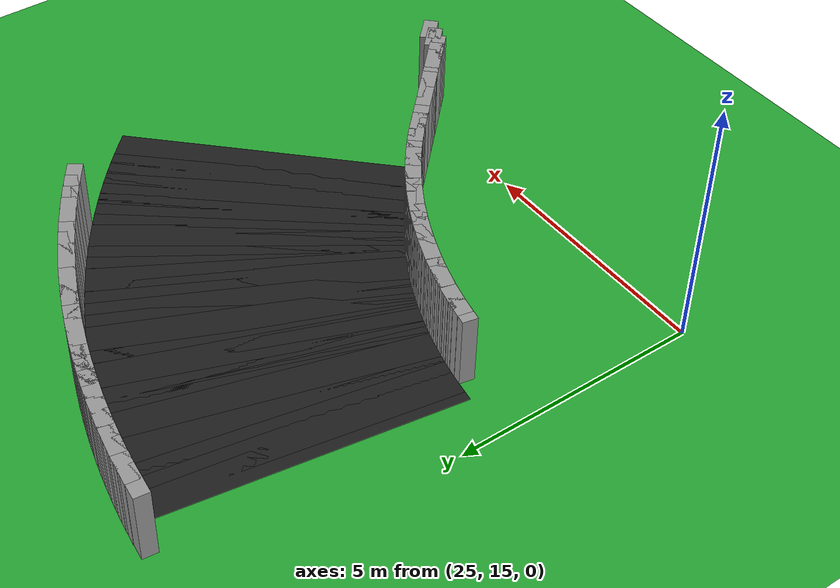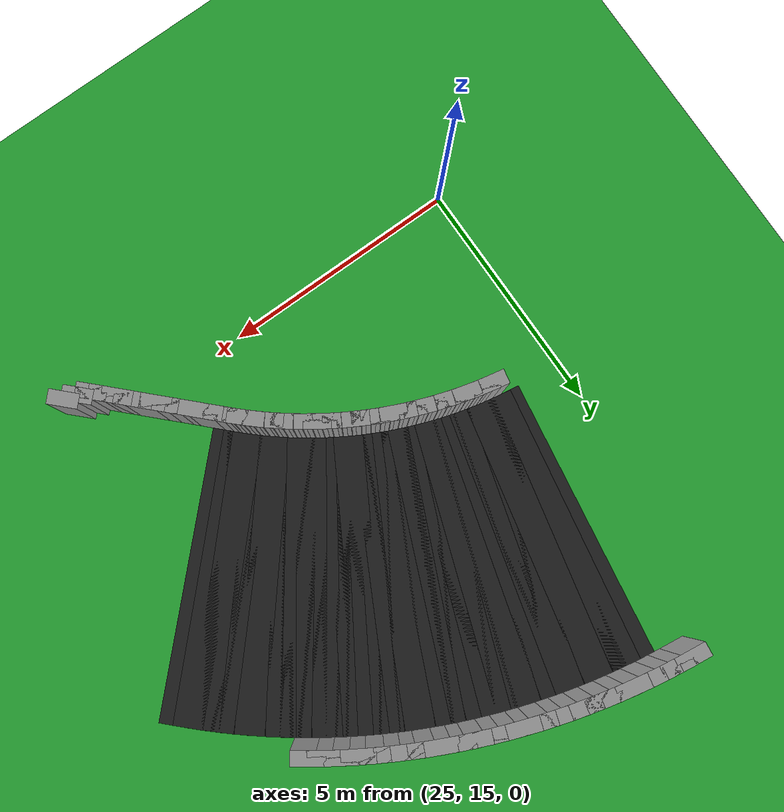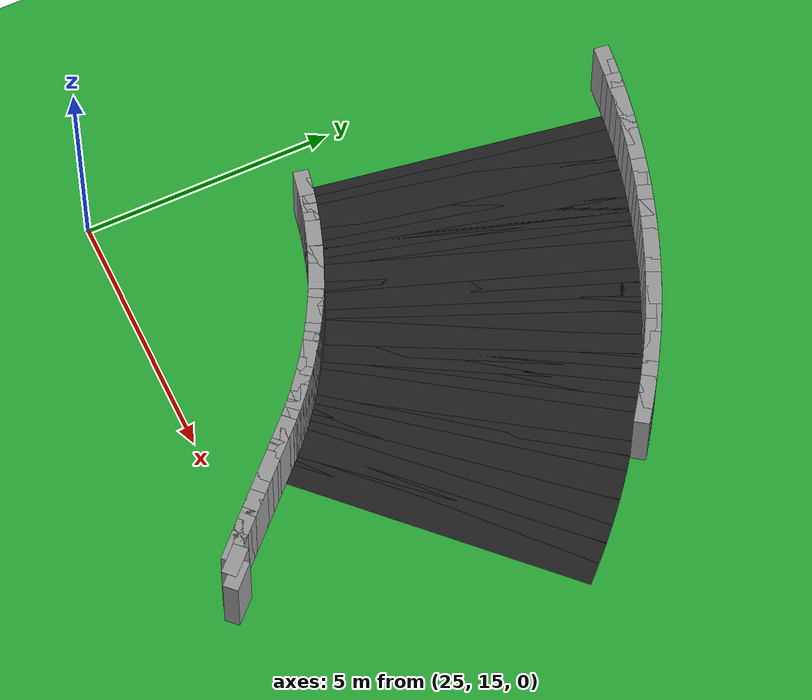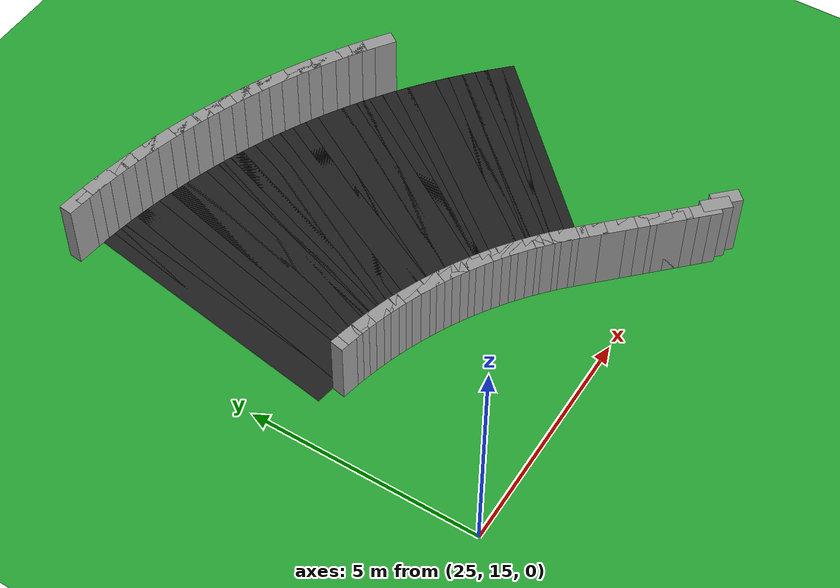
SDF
<sdf version="1.6">
 <world name="obstacle_asymturn">
  <include><uri>model://sun</uri></include>
  <model name="ground_plane">
   <static>true</static>
   <link name="link">
    <collision name="collision">
     <surface><friction><ode><mu>100</mu><mu2>50</mu2></ode></friction></surface>
     <geometry><plane><normal>0 0 1</normal><size>120 120</size></plane></geometry>
    </collision>
    <visual name="visual">
     <geometry><plane><normal>0 0 1</normal><size>120 120</size></plane></geometry>
     <material>
      <script><uri>file://media/materials/scripts/gazebo.material</uri><name>Gazebo/Green</name></script>
     </material>
    </visual>
   </link>
  </model>
  <model name="curbL_194">
   <static>true</static>
   <pose>33.458 14.373 0.750 0 0 2.35619</pose>
   <link name="link">
    <collision name="collision"><geometry><box><size>0.610 0.300 1.500</size></box></geometry></collision>
    <visual name="visual">
     <geometry><box><size>0.610 0.300 1.500</size></box></geometry>
     <material>
      <script><uri>file://media/materials/scripts/gazebo.material</uri><name>Gazebo/Grey</name></script>
     </material>
    </visual>
   </link>
  </model>
  <model name="curbL_195">
   <static>true</static>
   <pose>33.193 14.462 0.750 0 0 2.35619</pose>
   <link name="link">
    <collision name="collision"><geometry><box><size>0.610 0.300 1.500</size></box></geometry></collision>
    <visual name="visual">
     <geometry><box><size>0.610 0.300 1.500</size></box></geometry>
     <material>
      <script><uri>file://media/materials/scripts/gazebo.material</uri><name>Gazebo/Grey</name></script>
     </material>
    </visual>
   </link>
  </model>
  <model name="curbL_196">
   <static>true</static>
   <pose>32.943 14.565 0.750 0 0 2.35619</pose>
   <link name="link">
    <collision name="collision"><geometry><box><size>0.610 0.300 1.500</size></box></geometry></collision>
    <visual name="visual">
     <geometry><box><size>0.610 0.300 1.500</size></box></geometry>
     <material>
      <script><uri>file://media/materials/scripts/gazebo.material</uri><name>Gazebo/Grey</name></script>
     </material>
    </visual>
   </link>
  </model>
  <model name="curbL_197">
   <static>true</static>
   <pose>32.766 14.741 0.750 0 0 2.35619</pose>
   <link name="link">
    <collision name="collision"><geometry><box><size>0.610 0.300 1.500</size></box></geometry></collision>
    <visual name="visual">
     <geometry><box><size>0.610 0.300 1.500</size></box></geometry>
     <material>
      <script><uri>file://media/materials/scripts/gazebo.material</uri><name>Gazebo/Grey</name></script>
     </material>
    </visual>
   </link>
  </model>
  <model name="curbL_198">
   <static>true</static>
   <pose>32.589 14.918 0.750 0 0 2.35619</pose>
   <link name="link">
    <collision name="collision"><geometry><box><size>0.610 0.300 1.500</size></box></geometry></collision>
    <visual name="visual">
     <geometry><box><size>0.610 0.300 1.500</size></box></geometry>
     <material>
      <script><uri>file://media/materials/scripts/gazebo.material</uri><name>Gazebo/Grey</name></script>
     </material>
    </visual>
   </link>
  </model>
  <model name="curbL_199">
   <static>true</static>
   <pose>32.412 15.095 0.750 0 0 2.35619</pose>
   <link name="link">
    <collision name="collision"><geometry><box><size>0.610 0.300 1.500</size></box></geometry></collision>
    <visual name="visual">
     <geometry><box><size>0.610 0.300 1.500</size></box></geometry>
     <material>
      <script><uri>file://media/materials/scripts/gazebo.material</uri><name>Gazebo/Grey</name></script>
     </material>
    </visual>
   </link>
  </model>
  <model name="curbL_200">
   <static>true</static>
   <pose>32.236 15.272 0.750 0 0 2.35619</pose>
   <link name="link">
    <collision name="collision"><geometry><box><size>0.610 0.300 1.500</size></box></geometry></collision>
    <visual name="visual">
     <geometry><box><size>0.610 0.300 1.500</size></box></geometry>
     <material>
      <script><uri>file://media/materials/scripts/gazebo.material</uri><name>Gazebo/Grey</name></script>
     </material>
    </visual>
   </link>
  </model>
  <model name="curbL_201">
   <static>true</static>
   <pose>32.059 15.449 0.750 0 0 2.35619</pose>
   <link name="link">
    <collision name="collision"><geometry><box><size>0.610 0.300 1.500</size></box></geometry></collision>
    <visual name="visual">
     <geometry><box><size>0.610 0.300 1.500</size></box></geometry>
     <material>
      <script><uri>file://media/materials/scripts/gazebo.material</uri><name>Gazebo/Grey</name></script>
     </material>
    </visual>
   </link>
  </model>
  <model name="curbL_202">
   <static>true</static>
   <pose>31.882 15.625 0.750 0 0 2.35619</pose>
   <link name="link">
    <collision name="collision"><geometry><box><size>0.610 0.300 1.500</size></box></geometry></collision>
    <visual name="visual">
     <geometry><box><size>0.610 0.300 1.500</size></box></geometry>
     <material>
      <script><uri>file://media/materials/scripts/gazebo.material</uri><name>Gazebo/Grey</name></script>
     </material>
    </visual>
   </link>
  </model>
  <model name="curbL_203">
   <static>true</static>
   <pose>31.705 15.802 0.750 0 0 2.35619</pose>
   <link name="link">
    <collision name="collision"><geometry><box><size>0.610 0.300 1.500</size></box></geometry></collision>
    <visual name="visual">
     <geometry><box><size>0.610 0.300 1.500</size></box></geometry>
     <material>
      <script><uri>file://media/materials/scripts/gazebo.material</uri><name>Gazebo/Grey</name></script>
     </material>
    </visual>
   </link>
  </model>
  <model name="curbL_204">
   <static>true</static>
   <pose>31.528 15.979 0.750 0 0 2.35619</pose>
   <link name="link">
    <collision name="collision"><geometry><box><size>0.610 0.300 1.500</size></box></geometry></collision>
    <visual name="visual">
     <geometry><box><size>0.610 0.300 1.500</size></box></geometry>
     <material>
      <script><uri>file://media/materials/scripts/gazebo.material</uri><name>Gazebo/Grey</name></script>
     </material>
    </visual>
   </link>
  </model>
  <model name="curbL_205">
   <static>true</static>
   <pose>31.352 16.156 0.750 0 0 2.35619</pose>
   <link name="link">
    <collision name="collision"><geometry><box><size>0.610 0.300 1.500</size></box></geometry></collision>
    <visual name="visual">
     <geometry><box><size>0.610 0.300 1.500</size></box></geometry>
     <material>
      <script><uri>file://media/materials/scripts/gazebo.material</uri><name>Gazebo/Grey</name></script>
     </material>
    </visual>
   </link>
  </model>
  <model name="asphalt_206">
   <static>true</static>
   <pose>33.402 18.560 0.005 0 0 2.35619</pose>
   <link name="link">
    <visual name="visual">
     <geometry><box><size>0.610 6.000 0.010</size></box></geometry>
     <material>
      <script><uri>file://media/materials/scripts/gazebo.material</uri><name>Gazebo/Black</name></script>
     </material>
    </visual>
   </link>
  </model>
  <model name="curbL_206">
   <static>true</static>
   <pose>31.175 16.332 0.750 0 0 2.35619</pose>
   <link name="link">
    <collision name="collision"><geometry><box><size>0.610 0.300 1.500</size></box></geometry></collision>
    <visual name="visual">
     <geometry><box><size>0.610 0.300 1.500</size></box></geometry>
     <material>
      <script><uri>file://media/materials/scripts/gazebo.material</uri><name>Gazebo/Grey</name></script>
     </material>
    </visual>
   </link>
  </model>
  <model name="asphalt_207">
   <static>true</static>
   <pose>33.225 18.735 0.005 0 0 2.36653</pose>
   <link name="link">
    <visual name="visual">
     <geometry><box><size>0.608 6.000 0.010</size></box></geometry>
     <material>
      <script><uri>file://media/materials/scripts/gazebo.material</uri><name>Gazebo/Black</name></script>
     </material>
    </visual>
   </link>
  </model>
  <model name="curbL_207">
   <static>true</static>
   <pose>31.021 16.485 0.750 0 0 2.36653</pose>
   <link name="link">
    <collision name="collision"><geometry><box><size>0.543 0.300 1.500</size></box></geometry></collision>
    <visual name="visual">
     <geometry><box><size>0.543 0.300 1.500</size></box></geometry>
     <material>
      <script><uri>file://media/materials/scripts/gazebo.material</uri><name>Gazebo/Grey</name></script>
     </material>
    </visual>
   </link>
  </model>
  <model name="asphalt_208">
   <static>true</static>
   <pose>33.046 18.907 0.005 0 0 2.38720</pose>
   <link name="link">
    <visual name="visual">
     <geometry><box><size>0.608 6.000 0.010</size></box></geometry>
     <material>
      <script><uri>file://media/materials/scripts/gazebo.material</uri><name>Gazebo/Black</name></script>
     </material>
    </visual>
   </link>
  </model>
  <model name="curbL_208">
   <static>true</static>
   <pose>30.889 16.611 0.750 0 0 2.38720</pose>
   <link name="link">
    <collision name="collision"><geometry><box><size>0.543 0.300 1.500</size></box></geometry></collision>
    <visual name="visual">
     <geometry><box><size>0.543 0.300 1.500</size></box></geometry>
     <material>
      <script><uri>file://media/materials/scripts/gazebo.material</uri><name>Gazebo/Grey</name></script>
     </material>
    </visual>
   </link>
  </model>
  <model name="asphalt_209">
   <static>true</static>
   <pose>32.864 19.075 0.005 0 0 2.40787</pose>
   <link name="link">
    <visual name="visual">
     <geometry><box><size>0.608 6.000 0.010</size></box></geometry>
     <material>
      <script><uri>file://media/materials/scripts/gazebo.material</uri><name>Gazebo/Black</name></script>
     </material>
    </visual>
   </link>
  </model>
  <model name="curbL_209">
   <static>true</static>
   <pose>30.755 16.735 0.750 0 0 2.40787</pose>
   <link name="link">
    <collision name="collision"><geometry><box><size>0.543 0.300 1.500</size></box></geometry></collision>
    <visual name="visual">
     <geometry><box><size>0.543 0.300 1.500</size></box></geometry>
     <material>
      <script><uri>file://media/materials/scripts/gazebo.material</uri><name>Gazebo/Grey</name></script>
     </material>
    </visual>
   </link>
  </model>
  <model name="asphalt_210">
   <static>true</static>
   <pose>32.678 19.239 0.005 0 0 2.42853</pose>
   <link name="link">
    <visual name="visual">
     <geometry><box><size>0.608 6.000 0.010</size></box></geometry>
     <material>
      <script><uri>file://media/materials/scripts/gazebo.material</uri><name>Gazebo/Black</name></script>
     </material>
    </visual>
   </link>
  </model>
  <model name="curbL_210">
   <static>true</static>
   <pose>30.617 16.856 0.750 0 0 2.42853</pose>
   <link name="link">
    <collision name="collision"><geometry><box><size>0.543 0.300 1.500</size></box></geometry></collision>
    <visual name="visual">
     <geometry><box><size>0.543 0.300 1.500</size></box></geometry>
     <material>
      <script><uri>file://media/materials/scripts/gazebo.material</uri><name>Gazebo/Grey</name></script>
     </material>
    </visual>
   </link>
  </model>
  <model name="asphalt_211">
   <static>true</static>
   <pose>32.489 19.399 0.005 0 0 2.44920</pose>
   <link name="link">
    <visual name="visual">
     <geometry><box><size>0.608 6.000 0.010</size></box></geometry>
     <material>
      <script><uri>file://media/materials/scripts/gazebo.material</uri><name>Gazebo/Black</name></script>
     </material>
    </visual>
   </link>
  </model>
  <model name="curbL_211">
   <static>true</static>
   <pose>30.478 16.975 0.750 0 0 2.44920</pose>
   <link name="link">
    <collision name="collision"><geometry><box><size>0.543 0.300 1.500</size></box></geometry></collision>
    <visual name="visual">
     <geometry><box><size>0.543 0.300 1.500</size></box></geometry>
     <material>
      <script><uri>file://media/materials/scripts/gazebo.material</uri><name>Gazebo/Grey</name></script>
     </material>
    </visual>
   </link>
  </model>
  <model name="asphalt_212">
   <static>true</static>
   <pose>32.296 19.555 0.005 0 0 2.46987</pose>
   <link name="link">
    <visual name="visual">
     <geometry><box><size>0.608 6.000 0.010</size></box></geometry>
     <material>
      <script><uri>file://media/materials/scripts/gazebo.material</uri><name>Gazebo/Black</name></script>
     </material>
    </visual>
   </link>
  </model>
  <model name="curbL_212">
   <static>true</static>
   <pose>30.336 17.090 0.750 0 0 2.46987</pose>
   <link name="link">
    <collision name="collision"><geometry><box><size>0.543 0.300 1.500</size></box></geometry></collision>
    <visual name="visual">
     <geometry><box><size>0.543 0.300 1.500</size></box></geometry>
     <material>
      <script><uri>file://media/materials/scripts/gazebo.material</uri><name>Gazebo/Grey</name></script>
     </material>
    </visual>
   </link>
  </model>
  <model name="asphalt_213">
   <static>true</static>
   <pose>32.100 19.708 0.005 0 0 2.49054</pose>
   <link name="link">
    <visual name="visual">
     <geometry><box><size>0.608 6.000 0.010</size></box></geometry>
     <material>
      <script><uri>file://media/materials/scripts/gazebo.material</uri><name>Gazebo/Black</name></script>
     </material>
    </visual>
   </link>
  </model>
  <model name="curbL_213">
   <static>true</static>
   <pose>30.192 17.202 0.750 0 0 2.49054</pose>
   <link name="link">
    <collision name="collision"><geometry><box><size>0.543 0.300 1.500</size></box></geometry></collision>
    <visual name="visual">
     <geometry><box><size>0.543 0.300 1.500</size></box></geometry>
     <material>
      <script><uri>file://media/materials/scripts/gazebo.material</uri><name>Gazebo/Grey</name></script>
     </material>
    </visual>
   </link>
  </model>
  <model name="asphalt_214">
   <static>true</static>
   <pose>31.902 19.856 0.005 0 0 2.51121</pose>
   <link name="link">
    <visual name="visual">
     <geometry><box><size>0.608 6.000 0.010</size></box></geometry>
     <material>
      <script><uri>file://media/materials/scripts/gazebo.material</uri><name>Gazebo/Black</name></script>
     </material>
    </visual>
   </link>
  </model>
  <model name="curbL_214">
   <static>true</static>
   <pose>30.045 17.312 0.750 0 0 2.51121</pose>
   <link name="link">
    <collision name="collision"><geometry><box><size>0.543 0.300 1.500</size></box></geometry></collision>
    <visual name="visual">
     <geometry><box><size>0.543 0.300 1.500</size></box></geometry>
     <material>
      <script><uri>file://media/materials/scripts/gazebo.material</uri><name>Gazebo/Grey</name></script>
     </material>
    </visual>
   </link>
  </model>
  <model name="asphalt_215">
   <static>true</static>
   <pose>31.700 20.000 0.005 0 0 2.53188</pose>
   <link name="link">
    <visual name="visual">
     <geometry><box><size>0.608 6.000 0.010</size></box></geometry>
     <material>
      <script><uri>file://media/materials/scripts/gazebo.material</uri><name>Gazebo/Black</name></script>
     </material>
    </visual>
   </link>
  </model>
  <model name="curbL_215">
   <static>true</static>
   <pose>29.896 17.418 0.750 0 0 2.53188</pose>
   <link name="link">
    <collision name="collision"><geometry><box><size>0.543 0.300 1.500</size></box></geometry></collision>
    <visual name="visual">
     <geometry><box><size>0.543 0.300 1.500</size></box></geometry>
     <material>
      <script><uri>file://media/materials/scripts/gazebo.material</uri><name>Gazebo/Grey</name></script>
     </material>
    </visual>
   </link>
  </model>
  <model name="curbR_215">
   <static>true</static>
   <pose>33.504 22.582 0.750 0 0 2.53188</pose>
   <link name="link">
    <collision name="collision"><geometry><box><size>0.673 0.300 1.500</size></box></geometry></collision>
    <visual name="visual">
     <geometry><box><size>0.673 0.300 1.500</size></box></geometry>
     <material>
      <script><uri>file://media/materials/scripts/gazebo.material</uri><name>Gazebo/Grey</name></script>
     </material>
    </visual>
   </link>
  </model>
  <model name="asphalt_216">
   <static>true</static>
   <pose>31.495 20.140 0.005 0 0 2.55254</pose>
   <link name="link">
    <visual name="visual">
     <geometry><box><size>0.608 6.000 0.010</size></box></geometry>
     <material>
      <script><uri>file://media/materials/scripts/gazebo.material</uri><name>Gazebo/Black</name></script>
     </material>
    </visual>
   </link>
  </model>
  <model name="curbL_216">
   <static>true</static>
   <pose>29.745 17.521 0.750 0 0 2.55254</pose>
   <link name="link">
    <collision name="collision"><geometry><box><size>0.543 0.300 1.500</size></box></geometry></collision>
    <visual name="visual">
     <geometry><box><size>0.543 0.300 1.500</size></box></geometry>
     <material>
      <script><uri>file://media/materials/scripts/gazebo.material</uri><name>Gazebo/Grey</name></script>
     </material>
    </visual>
   </link>
  </model>
  <model name="curbR_216">
   <static>true</static>
   <pose>33.245 22.759 0.750 0 0 2.55254</pose>
   <link name="link">
    <collision name="collision"><geometry><box><size>0.673 0.300 1.500</size></box></geometry></collision>
    <visual name="visual">
     <geometry><box><size>0.673 0.300 1.500</size></box></geometry>
     <material>
      <script><uri>file://media/materials/scripts/gazebo.material</uri><name>Gazebo/Grey</name></script>
     </material>
    </visual>
   </link>
  </model>
  <model name="asphalt_217">
   <static>true</static>
   <pose>31.287 20.276 0.005 0 0 2.57321</pose>
   <link name="link">
    <visual name="visual">
     <geometry><box><size>0.608 6.000 0.010</size></box></geometry>
     <material>
      <script><uri>file://media/materials/scripts/gazebo.material</uri><name>Gazebo/Black</name></script>
     </material>
    </visual>
   </link>
  </model>
  <model name="curbL_217">
   <static>true</static>
   <pose>29.592 17.621 0.750 0 0 2.57321</pose>
   <link name="link">
    <collision name="collision"><geometry><box><size>0.543 0.300 1.500</size></box></geometry></collision>
    <visual name="visual">
     <geometry><box><size>0.543 0.300 1.500</size></box></geometry>
     <material>
      <script><uri>file://media/materials/scripts/gazebo.material</uri><name>Gazebo/Grey</name></script>
     </material>
    </visual>
   </link>
  </model>
  <model name="curbR_217">
   <static>true</static>
   <pose>32.983 22.930 0.750 0 0 2.57321</pose>
   <link name="link">
    <collision name="collision"><geometry><box><size>0.673 0.300 1.500</size></box></geometry></collision>
    <visual name="visual">
     <geometry><box><size>0.673 0.300 1.500</size></box></geometry>
     <material>
      <script><uri>file://media/materials/scripts/gazebo.material</uri><name>Gazebo/Grey</name></script>
     </material>
    </visual>
   </link>
  </model>
  <model name="asphalt_218">
   <static>true</static>
   <pose>31.077 20.407 0.005 0 0 2.59388</pose>
   <link name="link">
    <visual name="visual">
     <geometry><box><size>0.608 6.000 0.010</size></box></geometry>
     <material>
      <script><uri>file://media/materials/scripts/gazebo.material</uri><name>Gazebo/Black</name></script>
     </material>
    </visual>
   </link>
  </model>
  <model name="curbL_218">
   <static>true</static>
   <pose>29.437 17.718 0.750 0 0 2.59388</pose>
   <link name="link">
    <collision name="collision"><geometry><box><size>0.543 0.300 1.500</size></box></geometry></collision>
    <visual name="visual">
     <geometry><box><size>0.543 0.300 1.500</size></box></geometry>
     <material>
      <script><uri>file://media/materials/scripts/gazebo.material</uri><name>Gazebo/Grey</name></script>
     </material>
    </visual>
   </link>
  </model>
  <model name="curbR_218">
   <static>true</static>
   <pose>32.717 23.096 0.750 0 0 2.59388</pose>
   <link name="link">
    <collision name="collision"><geometry><box><size>0.673 0.300 1.500</size></box></geometry></collision>
    <visual name="visual">
     <geometry><box><size>0.673 0.300 1.500</size></box></geometry>
     <material>
      <script><uri>file://media/materials/scripts/gazebo.material</uri><name>Gazebo/Grey</name></script>
     </material>
    </visual>
   </link>
  </model>
  <model name="asphalt_219">
   <static>true</static>
   <pose>30.864 20.534 0.005 0 0 2.61455</pose>
   <link name="link">
    <visual name="visual">
     <geometry><box><size>0.608 6.000 0.010</size></box></geometry>
     <material>
      <script><uri>file://media/materials/scripts/gazebo.material</uri><name>Gazebo/Black</name></script>
     </material>
    </visual>
   </link>
  </model>
  <model name="curbL_219">
   <static>true</static>
   <pose>29.280 17.812 0.750 0 0 2.61455</pose>
   <link name="link">
    <collision name="collision"><geometry><box><size>0.543 0.300 1.500</size></box></geometry></collision>
    <visual name="visual">
     <geometry><box><size>0.543 0.300 1.500</size></box></geometry>
     <material>
      <script><uri>file://media/materials/scripts/gazebo.material</uri><name>Gazebo/Grey</name></script>
     </material>
    </visual>
   </link>
  </model>
  <model name="curbR_219">
   <static>true</static>
   <pose>32.448 23.256 0.750 0 0 2.61455</pose>
   <link name="link">
    <collision name="collision"><geometry><box><size>0.673 0.300 1.500</size></box></geometry></collision>
    <visual name="visual">
     <geometry><box><size>0.673 0.300 1.500</size></box></geometry>
     <material>
      <script><uri>file://media/materials/scripts/gazebo.material</uri><name>Gazebo/Grey</name></script>
     </material>
    </visual>
   </link>
  </model>
  <model name="asphalt_220">
   <static>true</static>
   <pose>30.648 20.657 0.005 0 0 2.63522</pose>
   <link name="link">
    <visual name="visual">
     <geometry><box><size>0.608 6.000 0.010</size></box></geometry>
     <material>
      <script><uri>file://media/materials/scripts/gazebo.material</uri><name>Gazebo/Black</name></script>
     </material>
    </visual>
   </link>
  </model>
  <model name="curbL_220">
   <static>true</static>
   <pose>29.121 17.902 0.750 0 0 2.63522</pose>
   <link name="link">
    <collision name="collision"><geometry><box><size>0.543 0.300 1.500</size></box></geometry></collision>
    <visual name="visual">
     <geometry><box><size>0.543 0.300 1.500</size></box></geometry>
     <material>
      <script><uri>file://media/materials/scripts/gazebo.material</uri><name>Gazebo/Grey</name></script>
     </material>
    </visual>
   </link>
  </model>
  <model name="curbR_220">
   <static>true</static>
   <pose>32.176 23.411 0.750 0 0 2.63522</pose>
   <link name="link">
    <collision name="collision"><geometry><box><size>0.673 0.300 1.500</size></box></geometry></collision>
    <visual name="visual">
     <geometry><box><size>0.673 0.300 1.500</size></box></geometry>
     <material>
      <script><uri>file://media/materials/scripts/gazebo.material</uri><name>Gazebo/Grey</name></script>
     </material>
    </visual>
   </link>
  </model>
  <model name="asphalt_221">
   <static>true</static>
   <pose>30.430 20.775 0.005 0 0 2.65589</pose>
   <link name="link">
    <visual name="visual">
     <geometry><box><size>0.608 6.000 0.010</size></box></geometry>
     <material>
      <script><uri>file://media/materials/scripts/gazebo.material</uri><name>Gazebo/Black</name></script>
     </material>
    </visual>
   </link>
  </model>
  <model name="curbL_221">
   <static>true</static>
   <pose>28.960 17.989 0.750 0 0 2.65589</pose>
   <link name="link">
    <collision name="collision"><geometry><box><size>0.543 0.300 1.500</size></box></geometry></collision>
    <visual name="visual">
     <geometry><box><size>0.543 0.300 1.500</size></box></geometry>
     <material>
      <script><uri>file://media/materials/scripts/gazebo.material</uri><name>Gazebo/Grey</name></script>
     </material>
    </visual>
   </link>
  </model>
  <model name="curbR_221">
   <static>true</static>
   <pose>31.901 23.560 0.750 0 0 2.65589</pose>
   <link name="link">
    <collision name="collision"><geometry><box><size>0.673 0.300 1.500</size></box></geometry></collision>
    <visual name="visual">
     <geometry><box><size>0.673 0.300 1.500</size></box></geometry>
     <material>
      <script><uri>file://media/materials/scripts/gazebo.material</uri><name>Gazebo/Grey</name></script>
     </material>
    </visual>
   </link>
  </model>
  <model name="asphalt_222">
   <static>true</static>
   <pose>30.210 20.888 0.005 0 0 2.67655</pose>
   <link name="link">
    <visual name="visual">
     <geometry><box><size>0.608 6.000 0.010</size></box></geometry>
     <material>
      <script><uri>file://media/materials/scripts/gazebo.material</uri><name>Gazebo/Black</name></script>
     </material>
    </visual>
   </link>
  </model>
  <model name="curbL_222">
   <static>true</static>
   <pose>28.797 18.073 0.750 0 0 2.67655</pose>
   <link name="link">
    <collision name="collision"><geometry><box><size>0.543 0.300 1.500</size></box></geometry></collision>
    <visual name="visual">
     <geometry><box><size>0.543 0.300 1.500</size></box></geometry>
     <material>
      <script><uri>file://media/materials/scripts/gazebo.material</uri><name>Gazebo/Grey</name></script>
     </material>
    </visual>
   </link>
  </model>
  <model name="curbR_222">
   <static>true</static>
   <pose>31.622 23.703 0.750 0 0 2.67655</pose>
   <link name="link">
    <collision name="collision"><geometry><box><size>0.673 0.300 1.500</size></box></geometry></collision>
    <visual name="visual">
     <geometry><box><size>0.673 0.300 1.500</size></box></geometry>
     <material>
      <script><uri>file://media/materials/scripts/gazebo.material</uri><name>Gazebo/Grey</name></script>
     </material>
    </visual>
   </link>
  </model>
  <model name="asphalt_223">
   <static>true</static>
   <pose>29.987 20.997 0.005 0 0 2.69722</pose>
   <link name="link">
    <visual name="visual">
     <geometry><box><size>0.608 6.000 0.010</size></box></geometry>
     <material>
      <script><uri>file://media/materials/scripts/gazebo.material</uri><name>Gazebo/Black</name></script>
     </material>
    </visual>
   </link>
  </model>
  <model name="curbL_223">
   <static>true</static>
   <pose>28.633 18.153 0.750 0 0 2.69722</pose>
   <link name="link">
    <collision name="collision"><geometry><box><size>0.543 0.300 1.500</size></box></geometry></collision>
    <visual name="visual">
     <geometry><box><size>0.543 0.300 1.500</size></box></geometry>
     <material>
      <script><uri>file://media/materials/scripts/gazebo.material</uri><name>Gazebo/Grey</name></script>
     </material>
    </visual>
   </link>
  </model>
  <model name="curbR_223">
   <static>true</static>
   <pose>31.341 23.841 0.750 0 0 2.69722</pose>
   <link name="link">
    <collision name="collision"><geometry><box><size>0.673 0.300 1.500</size></box></geometry></collision>
    <visual name="visual">
     <geometry><box><size>0.673 0.300 1.500</size></box></geometry>
     <material>
      <script><uri>file://media/materials/scripts/gazebo.material</uri><name>Gazebo/Grey</name></script>
     </material>
    </visual>
   </link>
  </model>
  <model name="asphalt_224">
   <static>true</static>
   <pose>29.762 21.101 0.005 0 0 2.71789</pose>
   <link name="link">
    <visual name="visual">
     <geometry><box><size>0.608 6.000 0.010</size></box></geometry>
     <material>
      <script><uri>file://media/materials/scripts/gazebo.material</uri><name>Gazebo/Black</name></script>
     </material>
    </visual>
   </link>
  </model>
  <model name="curbL_224">
   <static>true</static>
   <pose>28.467 18.230 0.750 0 0 2.71789</pose>
   <link name="link">
    <collision name="collision"><geometry><box><size>0.543 0.300 1.500</size></box></geometry></collision>
    <visual name="visual">
     <geometry><box><size>0.543 0.300 1.500</size></box></geometry>
     <material>
      <script><uri>file://media/materials/scripts/gazebo.material</uri><name>Gazebo/Grey</name></script>
     </material>
    </visual>
   </link>
  </model>
  <model name="curbR_224">
   <static>true</static>
   <pose>31.057 23.973 0.750 0 0 2.71789</pose>
   <link name="link">
    <collision name="collision"><geometry><box><size>0.673 0.300 1.500</size></box></geometry></collision>
    <visual name="visual">
     <geometry><box><size>0.673 0.300 1.500</size></box></geometry>
     <material>
      <script><uri>file://media/materials/scripts/gazebo.material</uri><name>Gazebo/Grey</name></script>
     </material>
    </visual>
   </link>
  </model>
  <model name="asphalt_225">
   <static>true</static>
   <pose>29.535 21.201 0.005 0 0 2.73856</pose>
   <link name="link">
    <visual name="visual">
     <geometry><box><size>0.608 6.000 0.010</size></box></geometry>
     <material>
      <script><uri>file://media/materials/scripts/gazebo.material</uri><name>Gazebo/Black</name></script>
     </material>
    </visual>
   </link>
  </model>
  <model name="curbL_225">
   <static>true</static>
   <pose>28.299 18.303 0.750 0 0 2.73856</pose>
   <link name="link">
    <collision name="collision"><geometry><box><size>0.543 0.300 1.500</size></box></geometry></collision>
    <visual name="visual">
     <geometry><box><size>0.543 0.300 1.500</size></box></geometry>
     <material>
      <script><uri>file://media/materials/scripts/gazebo.material</uri><name>Gazebo/Grey</name></script>
     </material>
    </visual>
   </link>
  </model>
  <model name="curbR_225">
   <static>true</static>
   <pose>30.770 24.098 0.750 0 0 2.73856</pose>
   <link name="link">
    <collision name="collision"><geometry><box><size>0.673 0.300 1.500</size></box></geometry></collision>
    <visual name="visual">
     <geometry><box><size>0.673 0.300 1.500</size></box></geometry>
     <material>
      <script><uri>file://media/materials/scripts/gazebo.material</uri><name>Gazebo/Grey</name></script>
     </material>
    </visual>
   </link>
  </model>
  <model name="asphalt_226">
   <static>true</static>
   <pose>29.306 21.296 0.005 0 0 2.75923</pose>
   <link name="link">
    <visual name="visual">
     <geometry><box><size>0.608 6.000 0.010</size></box></geometry>
     <material>
      <script><uri>file://media/materials/scripts/gazebo.material</uri><name>Gazebo/Black</name></script>
     </material>
    </visual>
   </link>
  </model>
  <model name="curbL_226">
   <static>true</static>
   <pose>28.130 18.373 0.750 0 0 2.75923</pose>
   <link name="link">
    <collision name="collision"><geometry><box><size>0.543 0.300 1.500</size></box></geometry></collision>
    <visual name="visual">
     <geometry><box><size>0.543 0.300 1.500</size></box></geometry>
     <material>
      <script><uri>file://media/materials/scripts/gazebo.material</uri><name>Gazebo/Grey</name></script>
     </material>
    </visual>
   </link>
  </model>
  <model name="curbR_226">
   <static>true</static>
   <pose>30.481 24.218 0.750 0 0 2.75923</pose>
   <link name="link">
    <collision name="collision"><geometry><box><size>0.673 0.300 1.500</size></box></geometry></collision>
    <visual name="visual">
     <geometry><box><size>0.673 0.300 1.500</size></box></geometry>
     <material>
      <script><uri>file://media/materials/scripts/gazebo.material</uri><name>Gazebo/Grey</name></script>
     </material>
    </visual>
   </link>
  </model>
  <model name="asphalt_227">
   <static>true</static>
   <pose>29.075 21.386 0.005 0 0 2.77990</pose>
   <link name="link">
    <visual name="visual">
     <geometry><box><size>0.608 6.000 0.010</size></box></geometry>
     <material>
      <script><uri>file://media/materials/scripts/gazebo.material</uri><name>Gazebo/Black</name></script>
     </material>
    </visual>
   </link>
  </model>
  <model name="curbL_227">
   <static>true</static>
   <pose>27.960 18.440 0.750 0 0 2.77990</pose>
   <link name="link">
    <collision name="collision"><geometry><box><size>0.543 0.300 1.500</size></box></geometry></collision>
    <visual name="visual">
     <geometry><box><size>0.543 0.300 1.500</size></box></geometry>
     <material>
      <script><uri>file://media/materials/scripts/gazebo.material</uri><name>Gazebo/Grey</name></script>
     </material>
    </visual>
   </link>
  </model>
  <model name="curbR_227">
   <static>true</static>
   <pose>30.189 24.332 0.750 0 0 2.77990</pose>
   <link name="link">
    <collision name="collision"><geometry><box><size>0.673 0.300 1.500</size></box></geometry></collision>
    <visual name="visual">
     <geometry><box><size>0.673 0.300 1.500</size></box></geometry>
     <material>
      <script><uri>file://media/materials/scripts/gazebo.material</uri><name>Gazebo/Grey</name></script>
     </material>
    </visual>
   </link>
  </model>
  <model name="asphalt_228">
   <static>true</static>
   <pose>28.842 21.471 0.005 0 0 2.80056</pose>
   <link name="link">
    <visual name="visual">
     <geometry><box><size>0.608 6.000 0.010</size></box></geometry>
     <material>
      <script><uri>file://media/materials/scripts/gazebo.material</uri><name>Gazebo/Black</name></script>
     </material>
    </visual>
   </link>
  </model>
  <model name="curbL_228">
   <static>true</static>
   <pose>27.788 18.503 0.750 0 0 2.80056</pose>
   <link name="link">
    <collision name="collision"><geometry><box><size>0.543 0.300 1.500</size></box></geometry></collision>
    <visual name="visual">
     <geometry><box><size>0.543 0.300 1.500</size></box></geometry>
     <material>
      <script><uri>file://media/materials/scripts/gazebo.material</uri><name>Gazebo/Grey</name></script>
     </material>
    </visual>
   </link>
  </model>
  <model name="curbR_228">
   <static>true</static>
   <pose>29.895 24.440 0.750 0 0 2.80056</pose>
   <link name="link">
    <collision name="collision"><geometry><box><size>0.673 0.300 1.500</size></box></geometry></collision>
    <visual name="visual">
     <geometry><box><size>0.673 0.300 1.500</size></box></geometry>
     <material>
      <script><uri>file://media/materials/scripts/gazebo.material</uri><name>Gazebo/Grey</name></script>
     </material>
    </visual>
   </link>
  </model>
  <model name="asphalt_229">
   <static>true</static>
   <pose>28.607 21.552 0.005 0 0 2.82123</pose>
   <link name="link">
    <visual name="visual">
     <geometry><box><size>0.608 6.000 0.010</size></box></geometry>
     <material>
      <script><uri>file://media/materials/scripts/gazebo.material</uri><name>Gazebo/Black</name></script>
     </material>
    </visual>
   </link>
  </model>
  <model name="curbL_229">
   <static>true</static>
   <pose>27.615 18.562 0.750 0 0 2.82123</pose>
   <link name="link">
    <collision name="collision"><geometry><box><size>0.543 0.300 1.500</size></box></geometry></collision>
    <visual name="visual">
     <geometry><box><size>0.543 0.300 1.500</size></box></geometry>
     <material>
      <script><uri>file://media/materials/scripts/gazebo.material</uri><name>Gazebo/Grey</name></script>
     </material>
    </visual>
   </link>
  </model>
  <model name="curbR_229">
   <static>true</static>
   <pose>29.599 24.541 0.750 0 0 2.82123</pose>
   <link name="link">
    <collision name="collision"><geometry><box><size>0.673 0.300 1.500</size></box></geometry></collision>
    <visual name="visual">
     <geometry><box><size>0.673 0.300 1.500</size></box></geometry>
     <material>
      <script><uri>file://media/materials/scripts/gazebo.material</uri><name>Gazebo/Grey</name></script>
     </material>
    </visual>
   </link>
  </model>
  <model name="asphalt_230">
   <static>true</static>
   <pose>28.371 21.628 0.005 0 0 2.84190</pose>
   <link name="link">
    <visual name="visual">
     <geometry><box><size>0.608 6.000 0.010</size></box></geometry>
     <material>
      <script><uri>file://media/materials/scripts/gazebo.material</uri><name>Gazebo/Black</name></script>
     </material>
    </visual>
   </link>
  </model>
  <model name="curbL_230">
   <static>true</static>
   <pose>27.441 18.618 0.750 0 0 2.84190</pose>
   <link name="link">
    <collision name="collision"><geometry><box><size>0.543 0.300 1.500</size></box></geometry></collision>
    <visual name="visual">
     <geometry><box><size>0.543 0.300 1.500</size></box></geometry>
     <material>
      <script><uri>file://media/materials/scripts/gazebo.material</uri><name>Gazebo/Grey</name></script>
     </material>
    </visual>
   </link>
  </model>
  <model name="curbR_230">
   <static>true</static>
   <pose>29.301 24.637 0.750 0 0 2.84190</pose>
   <link name="link">
    <collision name="collision"><geometry><box><size>0.673 0.300 1.500</size></box></geometry></collision>
    <visual name="visual">
     <geometry><box><size>0.673 0.300 1.500</size></box></geometry>
     <material>
      <script><uri>file://media/materials/scripts/gazebo.material</uri><name>Gazebo/Grey</name></script>
     </material>
    </visual>
   </link>
  </model>
  <model name="asphalt_231">
   <static>true</static>
   <pose>28.133 21.698 0.005 0 0 2.86257</pose>
   <link name="link">
    <visual name="visual">
     <geometry><box><size>0.608 6.000 0.010</size></box></geometry>
     <material>
      <script><uri>file://media/materials/scripts/gazebo.material</uri><name>Gazebo/Black</name></script>
     </material>
    </visual>
   </link>
  </model>
  <model name="curbL_231">
   <static>true</static>
   <pose>27.266 18.670 0.750 0 0 2.86257</pose>
   <link name="link">
    <collision name="collision"><geometry><box><size>0.543 0.300 1.500</size></box></geometry></collision>
    <visual name="visual">
     <geometry><box><size>0.543 0.300 1.500</size></box></geometry>
     <material>
      <script><uri>file://media/materials/scripts/gazebo.material</uri><name>Gazebo/Grey</name></script>
     </material>
    </visual>
   </link>
  </model>
  <model name="curbR_231">
   <static>true</static>
   <pose>29.001 24.726 0.750 0 0 2.86257</pose>
   <link name="link">
    <collision name="collision"><geometry><box><size>0.673 0.300 1.500</size></box></geometry></collision>
    <visual name="visual">
     <geometry><box><size>0.673 0.300 1.500</size></box></geometry>
     <material>
      <script><uri>file://media/materials/scripts/gazebo.material</uri><name>Gazebo/Grey</name></script>
     </material>
    </visual>
   </link>
  </model>
  <model name="asphalt_232">
   <static>true</static>
   <pose>27.894 21.764 0.005 0 0 2.88324</pose>
   <link name="link">
    <visual name="visual">
     <geometry><box><size>0.608 6.000 0.010</size></box></geometry>
     <material>
      <script><uri>file://media/materials/scripts/gazebo.material</uri><name>Gazebo/Black</name></script>
     </material>
    </visual>
   </link>
  </model>
  <model name="curbL_232">
   <static>true</static>
   <pose>27.089 18.719 0.750 0 0 2.88324</pose>
   <link name="link">
    <collision name="collision"><geometry><box><size>0.543 0.300 1.500</size></box></geometry></collision>
    <visual name="visual">
     <geometry><box><size>0.543 0.300 1.500</size></box></geometry>
     <material>
      <script><uri>file://media/materials/scripts/gazebo.material</uri><name>Gazebo/Grey</name></script>
     </material>
    </visual>
   </link>
  </model>
  <model name="curbR_232">
   <static>true</static>
   <pose>28.699 24.809 0.750 0 0 2.88324</pose>
   <link name="link">
    <collision name="collision"><geometry><box><size>0.673 0.300 1.500</size></box></geometry></collision>
    <visual name="visual">
     <geometry><box><size>0.673 0.300 1.500</size></box></geometry>
     <material>
      <script><uri>file://media/materials/scripts/gazebo.material</uri><name>Gazebo/Grey</name></script>
     </material>
    </visual>
   </link>
  </model>
  <model name="asphalt_233">
   <static>true</static>
   <pose>27.654 21.825 0.005 0 0 2.90391</pose>
   <link name="link">
    <visual name="visual">
     <geometry><box><size>0.608 6.000 0.010</size></box></geometry>
     <material>
      <script><uri>file://media/materials/scripts/gazebo.material</uri><name>Gazebo/Black</name></script>
     </material>
    </visual>
   </link>
  </model>
  <model name="curbL_233">
   <static>true</static>
   <pose>26.912 18.764 0.750 0 0 2.90391</pose>
   <link name="link">
    <collision name="collision"><geometry><box><size>0.543 0.300 1.500</size></box></geometry></collision>
    <visual name="visual">
     <geometry><box><size>0.543 0.300 1.500</size></box></geometry>
     <material>
      <script><uri>file://media/materials/scripts/gazebo.material</uri><name>Gazebo/Grey</name></script>
     </material>
    </visual>
   </link>
  </model>
  <model name="curbR_233">
   <static>true</static>
   <pose>28.395 24.886 0.750 0 0 2.90391</pose>
   <link name="link">
    <collision name="collision"><geometry><box><size>0.673 0.300 1.500</size></box></geometry></collision>
    <visual name="visual">
     <geometry><box><size>0.673 0.300 1.500</size></box></geometry>
     <material>
      <script><uri>file://media/materials/scripts/gazebo.material</uri><name>Gazebo/Grey</name></script>
     </material>
    </visual>
   </link>
  </model>
  <model name="asphalt_234">
   <static>true</static>
   <pose>27.412 21.881 0.005 0 0 2.92457</pose>
   <link name="link">
    <visual name="visual">
     <geometry><box><size>0.608 6.000 0.010</size></box></geometry>
     <material>
      <script><uri>file://media/materials/scripts/gazebo.material</uri><name>Gazebo/Black</name></script>
     </material>
    </visual>
   </link>
  </model>
  <model name="curbL_234">
   <static>true</static>
   <pose>26.734 18.805 0.750 0 0 2.92457</pose>
   <link name="link">
    <collision name="collision"><geometry><box><size>0.543 0.300 1.500</size></box></geometry></collision>
    <visual name="visual">
     <geometry><box><size>0.543 0.300 1.500</size></box></geometry>
     <material>
      <script><uri>file://media/materials/scripts/gazebo.material</uri><name>Gazebo/Grey</name></script>
     </material>
    </visual>
   </link>
  </model>
  <model name="curbR_234">
   <static>true</static>
   <pose>28.090 24.957 0.750 0 0 2.92457</pose>
   <link name="link">
    <collision name="collision"><geometry><box><size>0.673 0.300 1.500</size></box></geometry></collision>
    <visual name="visual">
     <geometry><box><size>0.673 0.300 1.500</size></box></geometry>
     <material>
      <script><uri>file://media/materials/scripts/gazebo.material</uri><name>Gazebo/Grey</name></script>
     </material>
    </visual>
   </link>
  </model>
  <model name="asphalt_235">
   <static>true</static>
   <pose>27.169 21.932 0.005 0 0 2.94524</pose>
   <link name="link">
    <visual name="visual">
     <geometry><box><size>0.608 6.000 0.010</size></box></geometry>
     <material>
      <script><uri>file://media/materials/scripts/gazebo.material</uri><name>Gazebo/Black</name></script>
     </material>
    </visual>
   </link>
  </model>
  <model name="curbL_235">
   <static>true</static>
   <pose>26.555 18.842 0.750 0 0 2.94524</pose>
   <link name="link">
    <collision name="collision"><geometry><box><size>0.543 0.300 1.500</size></box></geometry></collision>
    <visual name="visual">
     <geometry><box><size>0.543 0.300 1.500</size></box></geometry>
     <material>
      <script><uri>file://media/materials/scripts/gazebo.material</uri><name>Gazebo/Grey</name></script>
     </material>
    </visual>
   </link>
  </model>
  <model name="curbR_235">
   <static>true</static>
   <pose>27.784 25.021 0.750 0 0 2.94524</pose>
   <link name="link">
    <collision name="collision"><geometry><box><size>0.673 0.300 1.500</size></box></geometry></collision>
    <visual name="visual">
     <geometry><box><size>0.673 0.300 1.500</size></box></geometry>
     <material>
      <script><uri>file://media/materials/scripts/gazebo.material</uri><name>Gazebo/Grey</name></script>
     </material>
    </visual>
   </link>
  </model>
  <model name="asphalt_236">
   <static>true</static>
   <pose>26.926 21.978 0.005 0 0 2.96591</pose>
   <link name="link">
    <visual name="visual">
     <geometry><box><size>0.608 6.000 0.010</size></box></geometry>
     <material>
      <script><uri>file://media/materials/scripts/gazebo.material</uri><name>Gazebo/Black</name></script>
     </material>
    </visual>
   </link>
  </model>
  <model name="curbR_236">
   <static>true</static>
   <pose>27.476 25.079 0.750 0 0 2.96591</pose>
   <link name="link">
    <collision name="collision"><geometry><box><size>0.673 0.300 1.500</size></box></geometry></collision>
    <visual name="visual">
     <geometry><box><size>0.673 0.300 1.500</size></box></geometry>
     <material>
      <script><uri>file://media/materials/scripts/gazebo.material</uri><name>Gazebo/Grey</name></script>
     </material>
    </visual>
   </link>
  </model>
  <model name="asphalt_237">
   <static>true</static>
   <pose>26.681 22.018 0.005 0 0 2.98658</pose>
   <link name="link">
    <visual name="visual">
     <geometry><box><size>0.608 6.000 0.010</size></box></geometry>
     <material>
      <script><uri>file://media/materials/scripts/gazebo.material</uri><name>Gazebo/Black</name></script>
     </material>
    </visual>
   </link>
  </model>
  <model name="curbR_237">
   <static>true</static>
   <pose>27.167 25.131 0.750 0 0 2.98658</pose>
   <link name="link">
    <collision name="collision"><geometry><box><size>0.673 0.300 1.500</size></box></geometry></collision>
    <visual name="visual">
     <geometry><box><size>0.673 0.300 1.500</size></box></geometry>
     <material>
      <script><uri>file://media/materials/scripts/gazebo.material</uri><name>Gazebo/Grey</name></script>
     </material>
    </visual>
   </link>
  </model>
  <model name="curbR_238">
   <static>true</static>
   <pose>26.858 25.176 0.750 0 0 3.00725</pose>
   <link name="link">
    <collision name="collision"><geometry><box><size>0.673 0.300 1.500</size></box></geometry></collision>
    <visual name="visual">
     <geometry><box><size>0.673 0.300 1.500</size></box></geometry>
     <material>
      <script><uri>file://media/materials/scripts/gazebo.material</uri><name>Gazebo/Grey</name></script>
     </material>
    </visual>
   </link>
  </model>
  <model name="curbR_239">
   <static>true</static>
   <pose>26.547 25.214 0.750 0 0 3.02792</pose>
   <link name="link">
    <collision name="collision"><geometry><box><size>0.673 0.300 1.500</size></box></geometry></collision>
    <visual name="visual">
     <geometry><box><size>0.673 0.300 1.500</size></box></geometry>
     <material>
      <script><uri>file://media/materials/scripts/gazebo.material</uri><name>Gazebo/Grey</name></script>
     </material>
    </visual>
   </link>
  </model>
 </world>
</sdf>
